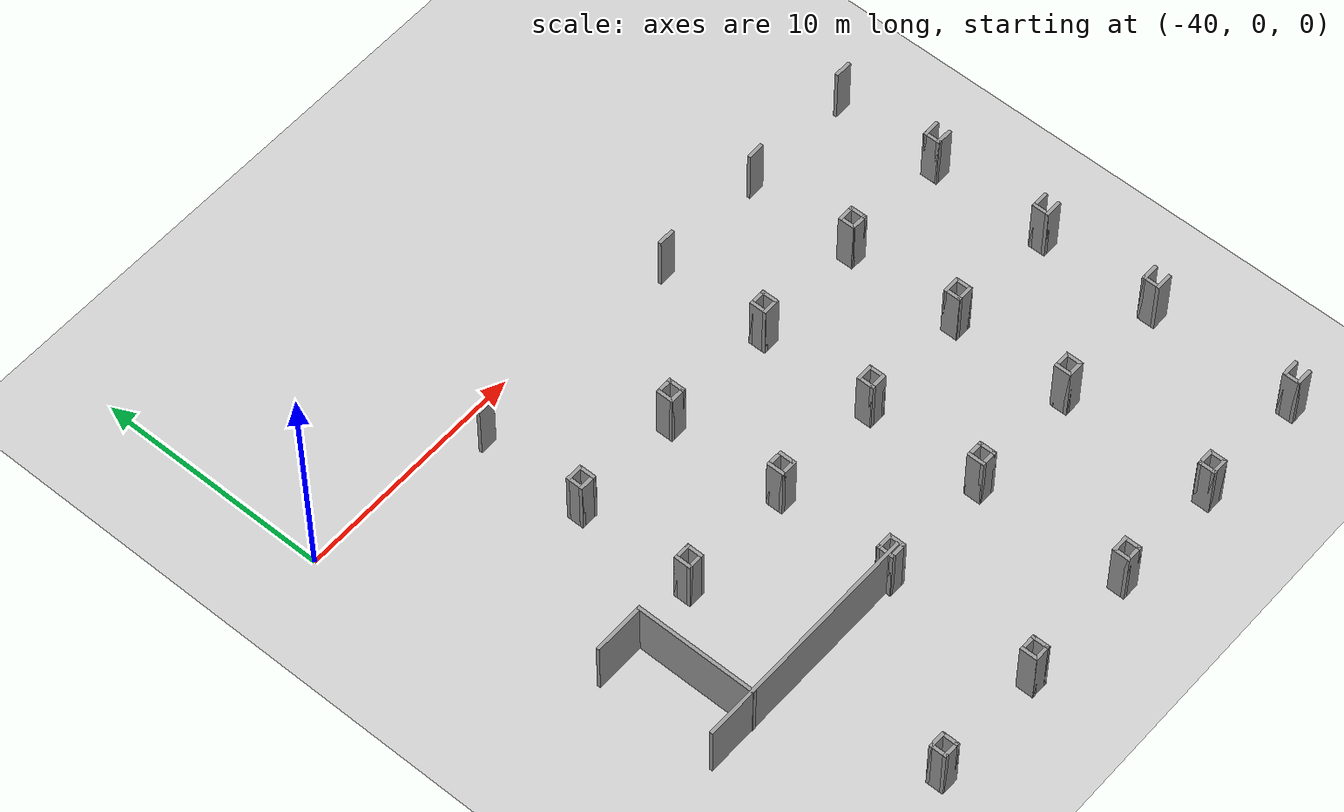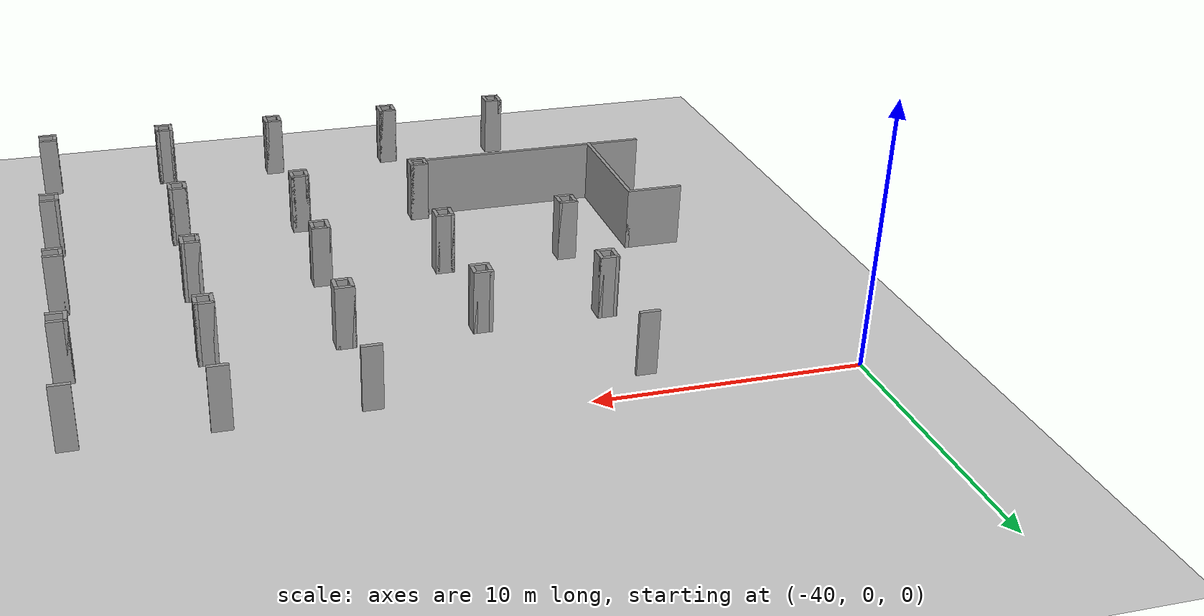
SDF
<sdf version="1.6">
 <world name="default">
  <model name="ground_plane">
   <static>1</static>
   <link name="link">
    <collision name="collision">
     <geometry><plane><normal>0 0 1</normal><size>100 100</size></plane></geometry>
     <surface>
      <contact><collide_bitmask>65535</collide_bitmask></contact>
      <friction><ode><mu>100</mu><mu2>50</mu2></ode></friction>
     </surface>
    </collision>
    <visual name="visual">
     <cast_shadows>0</cast_shadows>
     <geometry><plane><normal>0 0 1</normal><size>100 100</size></plane></geometry>
     <material>
      <script><uri>file://media/materials/scripts/gazebo.material</uri><name>Gazebo/Grey</name></script>
     </material>
    </visual>
   </link>
  </model>
  <model name="parking_area_big">
   <pose>0.030669 -0.012869 0 0 -0 0</pose>
   <link name="Wall_22">
    <collision name="Wall_22_Collision">
     <geometry><box><size>10 0.15 2.5</size></box></geometry>
     <pose>0 0 1.25 0 -0 0</pose>
    </collision>
    <visual name="Wall_22_Visual">
     <pose>0 0 1.25 0 -0 0</pose>
     <geometry><box><size>10 0.15 2.5</size></box></geometry>
     <material>
      <script><uri>file://media/materials/scripts/gazebo.material</uri><name>Gazebo/Grey</name></script>
      <ambient>1 1 1 1</ambient>
     </material>
     <meta><layer>0</layer></meta>
    </visual>
    <pose>-32.4064 -15.9854 0 0 -0 0</pose>
   </link>
   <link name="Wall_398">
    <collision name="Wall_398_Collision">
     <geometry><box><size>0.75 0.15 2.5</size></box></geometry>
     <pose>0 0 1.25 0 -0 0</pose>
    </collision>
    <visual name="Wall_398_Visual">
     <pose>0 0 1.25 0 -0 0</pose>
     <geometry><box><size>0.75 0.15 2.5</size></box></geometry>
     <material>
      <script><uri>file://media/materials/scripts/gazebo.material</uri><name>Gazebo/Grey</name></script>
      <ambient>1 1 1 1</ambient>
     </material>
     <meta><layer>0</layer></meta>
    </visual>
    <pose>-22.7152 -1.37405 0 0 -0 3.14159</pose>
   </link>
   <link name="Wall_403">
    <collision name="Wall_403_Collision">
     <geometry><box><size>0.75 0.15 2.5</size></box></geometry>
     <pose>0 0 1.25 0 -0 0</pose>
    </collision>
    <visual name="Wall_403_Visual">
     <pose>0 0 1.25 0 -0 0</pose>
     <geometry><box><size>0.75 0.15 2.5</size></box></geometry>
     <material>
      <script><uri>file://media/materials/scripts/gazebo.material</uri><name>Gazebo/Grey</name></script>
      <ambient>1 1 1 1</ambient>
     </material>
     <meta><layer>0</layer></meta>
    </visual>
    <pose>-17.6368 -1.32115 0 0 -0 3.14159</pose>
   </link>
   <link name="Wall_408">
    <collision name="Wall_408_Collision">
     <geometry><box><size>0.75 0.15 2.5</size></box></geometry>
     <pose>0 0 1.25 0 -0 0</pose>
    </collision>
    <visual name="Wall_408_Visual">
     <pose>0 0 1.25 0 -0 0</pose>
     <geometry><box><size>0.75 0.15 2.5</size></box></geometry>
     <material>
      <script><uri>file://media/materials/scripts/gazebo.material</uri><name>Gazebo/Grey</name></script>
      <ambient>1 1 1 1</ambient>
     </material>
     <meta><layer>0</layer></meta>
    </visual>
    <pose>-12.6377 -1.3476 0 0 -0 3.14159</pose>
   </link>
   <link name="Wall_416">
    <collision name="Wall_416_Collision">
     <geometry><box><size>0.75 0.15 2.5</size></box></geometry>
     <pose>0 0 1.25 0 -0 0</pose>
    </collision>
    <visual name="Wall_416_Visual">
     <pose>0 0 1.25 0 -0 0</pose>
     <geometry><box><size>0.75 0.15 2.5</size></box></geometry>
     <material>
      <script><uri>file://media/materials/scripts/gazebo.material</uri><name>Gazebo/Grey</name></script>
      <ambient>1 1 1 1</ambient>
     </material>
     <meta><layer>0</layer></meta>
    </visual>
    <pose>-27.6878 -5.5615 0 0 -0 0</pose>
   </link>
   <link name="Wall_417">
    <collision name="Wall_417_Collision">
     <geometry><box><size>0.75 0.15 2.5</size></box></geometry>
     <pose>0 0 1.25 0 -0 0</pose>
    </collision>
    <visual name="Wall_417_Visual">
     <pose>0 0 1.25 0 -0 0</pose>
     <geometry><box><size>0.75 0.15 2.5</size></box></geometry>
     <material>
      <script><uri>file://media/materials/scripts/gazebo.material</uri><name>Gazebo/Grey</name></script>
      <ambient>1 1 1 1</ambient>
     </material>
     <meta><layer>0</layer></meta>
    </visual>
    <pose>-27.3878 -5.8615 0 0 -0 -1.5708</pose>
   </link>
   <link name="Wall_418">
    <collision name="Wall_418_Collision">
     <geometry><box><size>0.75 0.15 2.5</size></box></geometry>
     <pose>0 0 1.25 0 -0 0</pose>
    </collision>
    <visual name="Wall_418_Visual">
     <pose>0 0 1.25 0 -0 0</pose>
     <geometry><box><size>0.75 0.15 2.5</size></box></geometry>
     <material>
      <script><uri>file://media/materials/scripts/gazebo.material</uri><name>Gazebo/Grey</name></script>
      <ambient>1 1 1 1</ambient>
     </material>
     <meta><layer>0</layer></meta>
    </visual>
    <pose>-27.6878 -6.1615 0 0 -0 3.14159</pose>
   </link>
   <link name="Wall_419">
    <collision name="Wall_419_Collision">
     <geometry><box><size>0.75 0.15 2.5</size></box></geometry>
     <pose>0 0 1.25 0 -0 0</pose>
    </collision>
    <visual name="Wall_419_Visual">
     <pose>0 0 1.25 0 -0 0</pose>
     <geometry><box><size>0.75 0.15 2.5</size></box></geometry>
     <material>
      <script><uri>file://media/materials/scripts/gazebo.material</uri><name>Gazebo/Grey</name></script>
      <ambient>1 1 1 1</ambient>
     </material>
     <meta><layer>0</layer></meta>
    </visual>
    <pose>-27.9878 -5.8615 0 0 -0 1.5708</pose>
   </link>
   <link name="Wall_421">
    <collision name="Wall_421_Collision">
     <geometry><box><size>0.75 0.15 2.5</size></box></geometry>
     <pose>0 0 1.25 0 -0 0</pose>
    </collision>
    <visual name="Wall_421_Visual">
     <pose>0 0 1.25 0 -0 0</pose>
     <geometry><box><size>0.75 0.15 2.5</size></box></geometry>
     <material>
      <script><uri>file://media/materials/scripts/gazebo.material</uri><name>Gazebo/Grey</name></script>
      <ambient>1 1 1 1</ambient>
     </material>
     <meta><layer>0</layer></meta>
    </visual>
    <pose>-22.6094 -5.6144 0 0 -0 0</pose>
   </link>
   <link name="Wall_422">
    <collision name="Wall_422_Collision">
     <geometry><box><size>0.75 0.15 2.5</size></box></geometry>
     <pose>0 0 1.25 0 -0 0</pose>
    </collision>
    <visual name="Wall_422_Visual">
     <pose>0 0 1.25 0 -0 0</pose>
     <geometry><box><size>0.75 0.15 2.5</size></box></geometry>
     <material>
      <script><uri>file://media/materials/scripts/gazebo.material</uri><name>Gazebo/Grey</name></script>
      <ambient>1 1 1 1</ambient>
     </material>
     <meta><layer>0</layer></meta>
    </visual>
    <pose>-22.3094 -5.9144 0 0 -0 -1.5708</pose>
   </link>
   <link name="Wall_423">
    <collision name="Wall_423_Collision">
     <geometry><box><size>0.75 0.15 2.5</size></box></geometry>
     <pose>0 0 1.25 0 -0 0</pose>
    </collision>
    <visual name="Wall_423_Visual">
     <pose>0 0 1.25 0 -0 0</pose>
     <geometry><box><size>0.75 0.15 2.5</size></box></geometry>
     <material>
      <script><uri>file://media/materials/scripts/gazebo.material</uri><name>Gazebo/Grey</name></script>
      <ambient>1 1 1 1</ambient>
     </material>
     <meta><layer>0</layer></meta>
    </visual>
    <pose>-22.6094 -6.2144 0 0 -0 3.14159</pose>
   </link>
   <link name="Wall_424">
    <collision name="Wall_424_Collision">
     <geometry><box><size>0.75 0.15 2.5</size></box></geometry>
     <pose>0 0 1.25 0 -0 0</pose>
    </collision>
    <visual name="Wall_424_Visual">
     <pose>0 0 1.25 0 -0 0</pose>
     <geometry><box><size>0.75 0.15 2.5</size></box></geometry>
     <material>
      <script><uri>file://media/materials/scripts/gazebo.material</uri><name>Gazebo/Grey</name></script>
      <ambient>1 1 1 1</ambient>
     </material>
     <meta><layer>0</layer></meta>
    </visual>
    <pose>-22.9094 -5.9144 0 0 -0 1.5708</pose>
   </link>
   <link name="Wall_429">
    <collision name="Wall_429_Collision">
     <geometry><box><size>0.75 0.15 2.5</size></box></geometry>
     <pose>0 0 1.25 0 -0 0</pose>
    </collision>
    <visual name="Wall_429_Visual">
     <pose>0 0 1.25 0 -0 0</pose>
     <geometry><box><size>0.75 0.15 2.5</size></box></geometry>
     <material>
      <script><uri>file://media/materials/scripts/gazebo.material</uri><name>Gazebo/Grey</name></script>
      <ambient>1 1 1 1</ambient>
     </material>
     <meta><layer>0</layer></meta>
    </visual>
    <pose>-17.6632 -5.64085 0 0 -0 0</pose>
   </link>
   <link name="Wall_430">
    <collision name="Wall_430_Collision">
     <geometry><box><size>0.75 0.15 2.5</size></box></geometry>
     <pose>0 0 1.25 0 -0 0</pose>
    </collision>
    <visual name="Wall_430_Visual">
     <pose>0 0 1.25 0 -0 0</pose>
     <geometry><box><size>0.75 0.15 2.5</size></box></geometry>
     <material>
      <script><uri>file://media/materials/scripts/gazebo.material</uri><name>Gazebo/Grey</name></script>
      <ambient>1 1 1 1</ambient>
     </material>
     <meta><layer>0</layer></meta>
    </visual>
    <pose>-17.3632 -5.94085 0 0 -0 -1.5708</pose>
   </link>
   <link name="Wall_431">
    <collision name="Wall_431_Collision">
     <geometry><box><size>0.75 0.15 2.5</size></box></geometry>
     <pose>0 0 1.25 0 -0 0</pose>
    </collision>
    <visual name="Wall_431_Visual">
     <pose>0 0 1.25 0 -0 0</pose>
     <geometry><box><size>0.75 0.15 2.5</size></box></geometry>
     <material>
      <script><uri>file://media/materials/scripts/gazebo.material</uri><name>Gazebo/Grey</name></script>
      <ambient>1 1 1 1</ambient>
     </material>
     <meta><layer>0</layer></meta>
    </visual>
    <pose>-17.6632 -6.24085 0 0 -0 3.14159</pose>
   </link>
   <link name="Wall_432">
    <collision name="Wall_432_Collision">
     <geometry><box><size>0.75 0.15 2.5</size></box></geometry>
     <pose>0 0 1.25 0 -0 0</pose>
    </collision>
    <visual name="Wall_432_Visual">
     <pose>0 0 1.25 0 -0 0</pose>
     <geometry><box><size>0.75 0.15 2.5</size></box></geometry>
     <material>
      <script><uri>file://media/materials/scripts/gazebo.material</uri><name>Gazebo/Grey</name></script>
      <ambient>1 1 1 1</ambient>
     </material>
     <meta><layer>0</layer></meta>
    </visual>
    <pose>-17.9632 -5.94085 0 0 -0 1.5708</pose>
   </link>
   <link name="Wall_434">
    <collision name="Wall_434_Collision">
     <geometry><box><size>0.75 0.15 2.5</size></box></geometry>
     <pose>0 0 1.25 0 -0 0</pose>
    </collision>
    <visual name="Wall_434_Visual">
     <pose>0 0 1.25 0 -0 0</pose>
     <geometry><box><size>0.75 0.15 2.5</size></box></geometry>
     <material>
      <script><uri>file://media/materials/scripts/gazebo.material</uri><name>Gazebo/Grey</name></script>
      <ambient>1 1 1 1</ambient>
     </material>
     <meta><layer>0</layer></meta>
    </visual>
    <pose>-12.6642 -5.5615 0 0 -0 0</pose>
   </link>
   <link name="Wall_436">
    <collision name="Wall_436_Collision">
     <geometry><box><size>0.75 0.15 2.5</size></box></geometry>
     <pose>0 0 1.25 0 -0 0</pose>
    </collision>
    <visual name="Wall_436_Visual">
     <pose>0 0 1.25 0 -0 0</pose>
     <geometry><box><size>0.75 0.15 2.5</size></box></geometry>
     <material>
      <script><uri>file://media/materials/scripts/gazebo.material</uri><name>Gazebo/Grey</name></script>
      <ambient>1 1 1 1</ambient>
     </material>
     <meta><layer>0</layer></meta>
    </visual>
    <pose>-12.6642 -6.1615 0 0 -0 3.14159</pose>
   </link>
   <link name="Wall_437">
    <collision name="Wall_437_Collision">
     <geometry><box><size>0.75 0.15 2.5</size></box></geometry>
     <pose>0 0 1.25 0 -0 0</pose>
    </collision>
    <visual name="Wall_437_Visual">
     <pose>0 0 1.25 0 -0 0</pose>
     <geometry><box><size>0.75 0.15 2.5</size></box></geometry>
     <material>
      <script><uri>file://media/materials/scripts/gazebo.material</uri><name>Gazebo/Grey</name></script>
      <ambient>1 1 1 1</ambient>
     </material>
     <meta><layer>0</layer></meta>
    </visual>
    <pose>-12.9642 -5.8615 0 0 -0 1.5708</pose>
   </link>
   <link name="Wall_444">
    <collision name="Wall_444_Collision">
     <geometry><box><size>0.75 0.15 2.5</size></box></geometry>
     <pose>0 0 1.25 0 -0 0</pose>
    </collision>
    <visual name="Wall_444_Visual">
     <pose>0 0 1.25 0 -0 0</pose>
     <geometry><box><size>0.75 0.15 2.5</size></box></geometry>
     <material>
      <script><uri>file://media/materials/scripts/gazebo.material</uri><name>Gazebo/Grey</name></script>
      <ambient>1 1 1 1</ambient>
     </material>
     <meta><layer>0</layer></meta>
    </visual>
    <pose>-27.5026 -10.5077 0 0 -0 0</pose>
   </link>
   <link name="Wall_445">
    <collision name="Wall_445_Collision">
     <geometry><box><size>0.75 0.15 2.5</size></box></geometry>
     <pose>0 0 1.25 0 -0 0</pose>
    </collision>
    <visual name="Wall_445_Visual">
     <pose>0 0 1.25 0 -0 0</pose>
     <geometry><box><size>0.75 0.15 2.5</size></box></geometry>
     <material>
      <script><uri>file://media/materials/scripts/gazebo.material</uri><name>Gazebo/Grey</name></script>
      <ambient>1 1 1 1</ambient>
     </material>
     <meta><layer>0</layer></meta>
    </visual>
    <pose>-27.2026 -10.8077 0 0 -0 -1.5708</pose>
   </link>
   <link name="Wall_446">
    <collision name="Wall_446_Collision">
     <geometry><box><size>0.75 0.15 2.5</size></box></geometry>
     <pose>0 0 1.25 0 -0 0</pose>
    </collision>
    <visual name="Wall_446_Visual">
     <pose>0 0 1.25 0 -0 0</pose>
     <geometry><box><size>0.75 0.15 2.5</size></box></geometry>
     <material>
      <script><uri>file://media/materials/scripts/gazebo.material</uri><name>Gazebo/Grey</name></script>
      <ambient>1 1 1 1</ambient>
     </material>
     <meta><layer>0</layer></meta>
    </visual>
    <pose>-27.5026 -11.1077 0 0 -0 3.14159</pose>
   </link>
   <link name="Wall_447">
    <collision name="Wall_447_Collision">
     <geometry><box><size>0.75 0.15 2.5</size></box></geometry>
     <pose>0 0 1.25 0 -0 0</pose>
    </collision>
    <visual name="Wall_447_Visual">
     <pose>0 0 1.25 0 -0 0</pose>
     <geometry><box><size>0.75 0.15 2.5</size></box></geometry>
     <material>
      <script><uri>file://media/materials/scripts/gazebo.material</uri><name>Gazebo/Grey</name></script>
      <ambient>1 1 1 1</ambient>
     </material>
     <meta><layer>0</layer></meta>
    </visual>
    <pose>-27.8026 -10.8077 0 0 -0 1.5708</pose>
   </link>
   <link name="Wall_449">
    <collision name="Wall_449_Collision">
     <geometry><box><size>0.75 0.15 2.5</size></box></geometry>
     <pose>0 0 1.25 0 -0 0</pose>
    </collision>
    <visual name="Wall_449_Visual">
     <pose>0 0 1.25 0 -0 0</pose>
     <geometry><box><size>0.75 0.15 2.5</size></box></geometry>
     <material>
      <script><uri>file://media/materials/scripts/gazebo.material</uri><name>Gazebo/Grey</name></script>
      <ambient>1 1 1 1</ambient>
     </material>
     <meta><layer>0</layer></meta>
    </visual>
    <pose>-22.6358 -10.587 0 0 -0 0</pose>
   </link>
   <link name="Wall_450">
    <collision name="Wall_450_Collision">
     <geometry><box><size>0.75 0.15 2.5</size></box></geometry>
     <pose>0 0 1.25 0 -0 0</pose>
    </collision>
    <visual name="Wall_450_Visual">
     <pose>0 0 1.25 0 -0 0</pose>
     <geometry><box><size>0.75 0.15 2.5</size></box></geometry>
     <material>
      <script><uri>file://media/materials/scripts/gazebo.material</uri><name>Gazebo/Grey</name></script>
      <ambient>1 1 1 1</ambient>
     </material>
     <meta><layer>0</layer></meta>
    </visual>
    <pose>-22.3358 -10.887 0 0 -0 -1.5708</pose>
   </link>
   <link name="Wall_451">
    <collision name="Wall_451_Collision">
     <geometry><box><size>0.75 0.15 2.5</size></box></geometry>
     <pose>0 0 1.25 0 -0 0</pose>
    </collision>
    <visual name="Wall_451_Visual">
     <pose>0 0 1.25 0 -0 0</pose>
     <geometry><box><size>0.75 0.15 2.5</size></box></geometry>
     <material>
      <script><uri>file://media/materials/scripts/gazebo.material</uri><name>Gazebo/Grey</name></script>
      <ambient>1 1 1 1</ambient>
     </material>
     <meta><layer>0</layer></meta>
    </visual>
    <pose>-22.6358 -11.187 0 0 -0 3.14159</pose>
   </link>
   <link name="Wall_452">
    <collision name="Wall_452_Collision">
     <geometry><box><size>0.75 0.15 2.5</size></box></geometry>
     <pose>0 0 1.25 0 -0 0</pose>
    </collision>
    <visual name="Wall_452_Visual">
     <pose>0 0 1.25 0 -0 0</pose>
     <geometry><box><size>0.75 0.15 2.5</size></box></geometry>
     <material>
      <script><uri>file://media/materials/scripts/gazebo.material</uri><name>Gazebo/Grey</name></script>
      <ambient>1 1 1 1</ambient>
     </material>
     <meta><layer>0</layer></meta>
    </visual>
    <pose>-22.9358 -10.887 0 0 -0 1.5708</pose>
   </link>
   <link name="Wall_454">
    <collision name="Wall_454_Collision">
     <geometry><box><size>0.75 0.15 2.5</size></box></geometry>
     <pose>0 0 1.25 0 -0 0</pose>
    </collision>
    <visual name="Wall_454_Visual">
     <pose>0 0 1.25 0 -0 0</pose>
     <geometry><box><size>0.75 0.15 2.5</size></box></geometry>
     <material>
      <script><uri>file://media/materials/scripts/gazebo.material</uri><name>Gazebo/Grey</name></script>
      <ambient>1 1 1 1</ambient>
     </material>
     <meta><layer>0</layer></meta>
    </visual>
    <pose>-17.6632 -10.5341 0 0 -0 0</pose>
   </link>
   <link name="Wall_455">
    <collision name="Wall_455_Collision">
     <geometry><box><size>0.75 0.15 2.5</size></box></geometry>
     <pose>0 0 1.25 0 -0 0</pose>
    </collision>
    <visual name="Wall_455_Visual">
     <pose>0 0 1.25 0 -0 0</pose>
     <geometry><box><size>0.75 0.15 2.5</size></box></geometry>
     <material>
      <script><uri>file://media/materials/scripts/gazebo.material</uri><name>Gazebo/Grey</name></script>
      <ambient>1 1 1 1</ambient>
     </material>
     <meta><layer>0</layer></meta>
    </visual>
    <pose>-17.3632 -10.8341 0 0 -0 -1.5708</pose>
   </link>
   <link name="Wall_456">
    <collision name="Wall_456_Collision">
     <geometry><box><size>0.75 0.15 2.5</size></box></geometry>
     <pose>0 0 1.25 0 -0 0</pose>
    </collision>
    <visual name="Wall_456_Visual">
     <pose>0 0 1.25 0 -0 0</pose>
     <geometry><box><size>0.75 0.15 2.5</size></box></geometry>
     <material>
      <script><uri>file://media/materials/scripts/gazebo.material</uri><name>Gazebo/Grey</name></script>
      <ambient>1 1 1 1</ambient>
     </material>
     <meta><layer>0</layer></meta>
    </visual>
    <pose>-17.6632 -11.1341 0 0 -0 3.14159</pose>
   </link>
   <link name="Wall_457">
    <collision name="Wall_457_Collision">
     <geometry><box><size>0.75 0.15 2.5</size></box></geometry>
     <pose>0 0 1.25 0 -0 0</pose>
    </collision>
    <visual name="Wall_457_Visual">
     <pose>0 0 1.25 0 -0 0</pose>
     <geometry><box><size>0.75 0.15 2.5</size></box></geometry>
     <material>
      <script><uri>file://media/materials/scripts/gazebo.material</uri><name>Gazebo/Grey</name></script>
      <ambient>1 1 1 1</ambient>
     </material>
     <meta><layer>0</layer></meta>
    </visual>
    <pose>-17.9632 -10.8341 0 0 -0 1.5708</pose>
   </link>
   <link name="Wall_459">
    <collision name="Wall_459_Collision">
     <geometry><box><size>0.75 0.15 2.5</size></box></geometry>
     <pose>0 0 1.25 0 -0 0</pose>
    </collision>
    <visual name="Wall_459_Visual">
     <pose>0 0 1.25 0 -0 0</pose>
     <geometry><box><size>0.75 0.15 2.5</size></box></geometry>
     <material>
      <script><uri>file://media/materials/scripts/gazebo.material</uri><name>Gazebo/Grey</name></script>
      <ambient>1 1 1 1</ambient>
     </material>
     <meta><layer>0</layer></meta>
    </visual>
    <pose>-12.6377 -10.6135 0 0 -0 0</pose>
   </link>
   <link name="Wall_461">
    <collision name="Wall_461_Collision">
     <geometry><box><size>0.75 0.15 2.5</size></box></geometry>
     <pose>0 0 1.25 0 -0 0</pose>
    </collision>
    <visual name="Wall_461_Visual">
     <pose>0 0 1.25 0 -0 0</pose>
     <geometry><box><size>0.75 0.15 2.5</size></box></geometry>
     <material>
      <script><uri>file://media/materials/scripts/gazebo.material</uri><name>Gazebo/Grey</name></script>
      <ambient>1 1 1 1</ambient>
     </material>
     <meta><layer>0</layer></meta>
    </visual>
    <pose>-12.6377 -11.2135 0 0 -0 3.14159</pose>
   </link>
   <link name="Wall_462">
    <collision name="Wall_462_Collision">
     <geometry><box><size>0.75 0.15 2.5</size></box></geometry>
     <pose>0 0 1.25 0 -0 0</pose>
    </collision>
    <visual name="Wall_462_Visual">
     <pose>0 0 1.25 0 -0 0</pose>
     <geometry><box><size>0.75 0.15 2.5</size></box></geometry>
     <material>
      <script><uri>file://media/materials/scripts/gazebo.material</uri><name>Gazebo/Grey</name></script>
      <ambient>1 1 1 1</ambient>
     </material>
     <meta><layer>0</layer></meta>
    </visual>
    <pose>-12.9377 -10.9135 0 0 -0 1.5708</pose>
   </link>
   <link name="Wall_469">
    <collision name="Wall_469_Collision">
     <geometry><box><size>0.75 0.15 2.5</size></box></geometry>
     <pose>0 0 1.25 0 -0 0</pose>
    </collision>
    <visual name="Wall_469_Visual">
     <pose>0 0 1.25 0 -0 0</pose>
     <geometry><box><size>0.75 0.15 2.5</size></box></geometry>
     <material>
      <script><uri>file://media/materials/scripts/gazebo.material</uri><name>Gazebo/Grey</name></script>
      <ambient>1 1 1 1</ambient>
     </material>
     <meta><layer>0</layer></meta>
    </visual>
    <pose>-27.6613 -15.5861 0 0 -0 0</pose>
   </link>
   <link name="Wall_470">
    <collision name="Wall_470_Collision">
     <geometry><box><size>0.75 0.15 2.5</size></box></geometry>
     <pose>0 0 1.25 0 -0 0</pose>
    </collision>
    <visual name="Wall_470_Visual">
     <pose>0 0 1.25 0 -0 0</pose>
     <geometry><box><size>0.75 0.15 2.5</size></box></geometry>
     <material>
      <script><uri>file://media/materials/scripts/gazebo.material</uri><name>Gazebo/Grey</name></script>
      <ambient>1 1 1 1</ambient>
     </material>
     <meta><layer>0</layer></meta>
    </visual>
    <pose>-27.3613 -15.8861 0 0 -0 -1.5708</pose>
   </link>
   <link name="Wall_471">
    <collision name="Wall_471_Collision">
     <geometry><box><size>0.75 0.15 2.5</size></box></geometry>
     <pose>0 0 1.25 0 -0 0</pose>
    </collision>
    <visual name="Wall_471_Visual">
     <pose>0 0 1.25 0 -0 0</pose>
     <geometry><box><size>0.75 0.15 2.5</size></box></geometry>
     <material>
      <script><uri>file://media/materials/scripts/gazebo.material</uri><name>Gazebo/Grey</name></script>
      <ambient>1 1 1 1</ambient>
     </material>
     <meta><layer>0</layer></meta>
    </visual>
    <pose>-27.6613 -16.1861 0 0 -0 3.14159</pose>
   </link>
   <link name="Wall_472">
    <collision name="Wall_472_Collision">
     <geometry><box><size>0.75 0.15 2.5</size></box></geometry>
     <pose>0 0 1.25 0 -0 0</pose>
    </collision>
    <visual name="Wall_472_Visual">
     <pose>0 0 1.25 0 -0 0</pose>
     <geometry><box><size>0.75 0.15 2.5</size></box></geometry>
     <material>
      <script><uri>file://media/materials/scripts/gazebo.material</uri><name>Gazebo/Grey</name></script>
      <ambient>1 1 1 1</ambient>
     </material>
     <meta><layer>0</layer></meta>
    </visual>
    <pose>-27.9613 -15.8861 0 0 -0 1.5708</pose>
   </link>
   <link name="Wall_474">
    <collision name="Wall_474_Collision">
     <geometry><box><size>0.75 0.15 2.5</size></box></geometry>
     <pose>0 0 1.25 0 -0 0</pose>
    </collision>
    <visual name="Wall_474_Visual">
     <pose>0 0 1.25 0 -0 0</pose>
     <geometry><box><size>0.75 0.15 2.5</size></box></geometry>
     <material>
      <script><uri>file://media/materials/scripts/gazebo.material</uri><name>Gazebo/Grey</name></script>
      <ambient>1 1 1 1</ambient>
     </material>
     <meta><layer>0</layer></meta>
    </visual>
    <pose>-22.6358 -15.5861 0 0 -0 0</pose>
   </link>
   <link name="Wall_475">
    <collision name="Wall_475_Collision">
     <geometry><box><size>0.75 0.15 2.5</size></box></geometry>
     <pose>0 0 1.25 0 -0 0</pose>
    </collision>
    <visual name="Wall_475_Visual">
     <pose>0 0 1.25 0 -0 0</pose>
     <geometry><box><size>0.75 0.15 2.5</size></box></geometry>
     <material>
      <script><uri>file://media/materials/scripts/gazebo.material</uri><name>Gazebo/Grey</name></script>
      <ambient>1 1 1 1</ambient>
     </material>
     <meta><layer>0</layer></meta>
    </visual>
    <pose>-22.3358 -15.8861 0 0 -0 -1.5708</pose>
   </link>
   <link name="Wall_476">
    <collision name="Wall_476_Collision">
     <geometry><box><size>0.75 0.15 2.5</size></box></geometry>
     <pose>0 0 1.25 0 -0 0</pose>
    </collision>
    <visual name="Wall_476_Visual">
     <pose>0 0 1.25 0 -0 0</pose>
     <geometry><box><size>0.75 0.15 2.5</size></box></geometry>
     <material>
      <script><uri>file://media/materials/scripts/gazebo.material</uri><name>Gazebo/Grey</name></script>
      <ambient>1 1 1 1</ambient>
     </material>
     <meta><layer>0</layer></meta>
    </visual>
    <pose>-22.6358 -16.1861 0 0 -0 3.14159</pose>
   </link>
   <link name="Wall_477">
    <collision name="Wall_477_Collision">
     <geometry><box><size>0.75 0.15 2.5</size></box></geometry>
     <pose>0 0 1.25 0 -0 0</pose>
    </collision>
    <visual name="Wall_477_Visual">
     <pose>0 0 1.25 0 -0 0</pose>
     <geometry><box><size>0.75 0.15 2.5</size></box></geometry>
     <material>
      <script><uri>file://media/materials/scripts/gazebo.material</uri><name>Gazebo/Grey</name></script>
      <ambient>1 1 1 1</ambient>
     </material>
     <meta><layer>0</layer></meta>
    </visual>
    <pose>-22.9358 -15.8861 0 0 -0 1.5708</pose>
   </link>
   <link name="Wall_479">
    <collision name="Wall_479_Collision">
     <geometry><box><size>0.75 0.15 2.5</size></box></geometry>
     <pose>0 0 1.25 0 -0 0</pose>
    </collision>
    <visual name="Wall_479_Visual">
     <pose>0 0 1.25 0 -0 0</pose>
     <geometry><box><size>0.75 0.15 2.5</size></box></geometry>
     <material>
      <script><uri>file://media/materials/scripts/gazebo.material</uri><name>Gazebo/Grey</name></script>
      <ambient>1 1 1 1</ambient>
     </material>
     <meta><layer>0</layer></meta>
    </visual>
    <pose>-17.6632 -15.5596 0 0 -0 0</pose>
   </link>
   <link name="Wall_480">
    <collision name="Wall_480_Collision">
     <geometry><box><size>0.75 0.15 2.5</size></box></geometry>
     <pose>0 0 1.25 0 -0 0</pose>
    </collision>
    <visual name="Wall_480_Visual">
     <pose>0 0 1.25 0 -0 0</pose>
     <geometry><box><size>0.75 0.15 2.5</size></box></geometry>
     <material>
      <script><uri>file://media/materials/scripts/gazebo.material</uri><name>Gazebo/Grey</name></script>
      <ambient>1 1 1 1</ambient>
     </material>
     <meta><layer>0</layer></meta>
    </visual>
    <pose>-17.3632 -15.8596 0 0 -0 -1.5708</pose>
   </link>
   <link name="Wall_481">
    <collision name="Wall_481_Collision">
     <geometry><box><size>0.75 0.15 2.5</size></box></geometry>
     <pose>0 0 1.25 0 -0 0</pose>
    </collision>
    <visual name="Wall_481_Visual">
     <pose>0 0 1.25 0 -0 0</pose>
     <geometry><box><size>0.75 0.15 2.5</size></box></geometry>
     <material>
      <script><uri>file://media/materials/scripts/gazebo.material</uri><name>Gazebo/Grey</name></script>
      <ambient>1 1 1 1</ambient>
     </material>
     <meta><layer>0</layer></meta>
    </visual>
    <pose>-17.6632 -16.1596 0 0 -0 3.14159</pose>
   </link>
   <link name="Wall_482">
    <collision name="Wall_482_Collision">
     <geometry><box><size>0.75 0.15 2.5</size></box></geometry>
     <pose>0 0 1.25 0 -0 0</pose>
    </collision>
    <visual name="Wall_482_Visual">
     <pose>0 0 1.25 0 -0 0</pose>
     <geometry><box><size>0.75 0.15 2.5</size></box></geometry>
     <material>
      <script><uri>file://media/materials/scripts/gazebo.material</uri><name>Gazebo/Grey</name></script>
      <ambient>1 1 1 1</ambient>
     </material>
     <meta><layer>0</layer></meta>
    </visual>
    <pose>-17.9632 -15.8596 0 0 -0 1.5708</pose>
   </link>
   <link name="Wall_484">
    <collision name="Wall_484_Collision">
     <geometry><box><size>0.75 0.15 2.5</size></box></geometry>
     <pose>0 0 1.25 0 -0 0</pose>
    </collision>
    <visual name="Wall_484_Visual">
     <pose>0 0 1.25 0 -0 0</pose>
     <geometry><box><size>0.75 0.15 2.5</size></box></geometry>
     <material>
      <script><uri>file://media/materials/scripts/gazebo.material</uri><name>Gazebo/Grey</name></script>
      <ambient>1 1 1 1</ambient>
     </material>
     <meta><layer>0</layer></meta>
    </visual>
    <pose>-12.6113 -15.6125 0 0 -0 0</pose>
   </link>
   <link name="Wall_486">
    <collision name="Wall_486_Collision">
     <geometry><box><size>0.75 0.15 2.5</size></box></geometry>
     <pose>0 0 1.25 0 -0 0</pose>
    </collision>
    <visual name="Wall_486_Visual">
     <pose>0 0 1.25 0 -0 0</pose>
     <geometry><box><size>0.75 0.15 2.5</size></box></geometry>
     <material>
      <script><uri>file://media/materials/scripts/gazebo.material</uri><name>Gazebo/Grey</name></script>
      <ambient>1 1 1 1</ambient>
     </material>
     <meta><layer>0</layer></meta>
    </visual>
    <pose>-12.6113 -16.239 0 0 -0 3.14159</pose>
   </link>
   <link name="Wall_488">
    <collision name="Wall_488_Collision">
     <geometry><box><size>0.77645 0.15 2.5</size></box></geometry>
     <pose>0 0 1.25 0 -0 0</pose>
    </collision>
    <visual name="Wall_488_Visual">
     <pose>0 0 1.25 0 -0 0</pose>
     <geometry><box><size>0.77645 0.15 2.5</size></box></geometry>
     <material>
      <script><uri>file://media/materials/scripts/gazebo.material</uri><name>Gazebo/Grey</name></script>
      <ambient>1 1 1 1</ambient>
     </material>
     <meta><layer>0</layer></meta>
    </visual>
    <pose>-12.9113 -15.9257 0 0 -0 1.5708</pose>
   </link>
   <link name="Wall_495">
    <collision name="Wall_495_Collision">
     <geometry><box><size>0.75 0.15 2.5</size></box></geometry>
     <pose>0 0 1.25 0 -0 0</pose>
    </collision>
    <visual name="Wall_495_Visual">
     <pose>0 0 1.25 0 -0 0</pose>
     <geometry><box><size>0.75 0.15 2.5</size></box></geometry>
     <material>
      <script><uri>file://media/materials/scripts/gazebo.material</uri><name>Gazebo/Grey</name></script>
      <ambient>1 1 1 1</ambient>
     </material>
     <meta><layer>0</layer></meta>
    </visual>
    <pose>-27.6613 -21.9076 0 0 -0 0</pose>
   </link>
   <link name="Wall_496">
    <collision name="Wall_496_Collision">
     <geometry><box><size>0.75 0.15 2.5</size></box></geometry>
     <pose>0 0 1.25 0 -0 0</pose>
    </collision>
    <visual name="Wall_496_Visual">
     <pose>0 0 1.25 0 -0 0</pose>
     <geometry><box><size>0.75 0.15 2.5</size></box></geometry>
     <material>
      <script><uri>file://media/materials/scripts/gazebo.material</uri><name>Gazebo/Grey</name></script>
      <ambient>1 1 1 1</ambient>
     </material>
     <meta><layer>0</layer></meta>
    </visual>
    <pose>-27.3613 -22.2076 0 0 -0 -1.5708</pose>
   </link>
   <link name="Wall_497">
    <collision name="Wall_497_Collision">
     <geometry><box><size>0.75 0.15 2.5</size></box></geometry>
     <pose>0 0 1.25 0 -0 0</pose>
    </collision>
    <visual name="Wall_497_Visual">
     <pose>0 0 1.25 0 -0 0</pose>
     <geometry><box><size>0.75 0.15 2.5</size></box></geometry>
     <material>
      <script><uri>file://media/materials/scripts/gazebo.material</uri><name>Gazebo/Grey</name></script>
      <ambient>1 1 1 1</ambient>
     </material>
     <meta><layer>0</layer></meta>
    </visual>
    <pose>-27.6613 -22.5076 0 0 -0 3.14159</pose>
   </link>
   <link name="Wall_498">
    <collision name="Wall_498_Collision">
     <geometry><box><size>0.75 0.15 2.5</size></box></geometry>
     <pose>0 0 1.25 0 -0 0</pose>
    </collision>
    <visual name="Wall_498_Visual">
     <pose>0 0 1.25 0 -0 0</pose>
     <geometry><box><size>0.75 0.15 2.5</size></box></geometry>
     <material>
      <script><uri>file://media/materials/scripts/gazebo.material</uri><name>Gazebo/Grey</name></script>
      <ambient>1 1 1 1</ambient>
     </material>
     <meta><layer>0</layer></meta>
    </visual>
    <pose>-27.9613 -22.2076 0 0 -0 1.5708</pose>
   </link>
   <link name="Wall_502">
    <collision name="Wall_502_Collision">
     <geometry><box><size>0.75 0.15 2.5</size></box></geometry>
     <pose>0 0 1.25 0 -0 0</pose>
    </collision>
    <visual name="Wall_502_Visual">
     <pose>0 0 1.25 0 -0 0</pose>
     <geometry><box><size>0.75 0.15 2.5</size></box></geometry>
     <material>
      <script><uri>file://media/materials/scripts/gazebo.material</uri><name>Gazebo/Grey</name></script>
      <ambient>1 1 1 1</ambient>
     </material>
     <meta><layer>0</layer></meta>
    </visual>
    <pose>-22.4507 -21.8547 0 0 -0 0</pose>
   </link>
   <link name="Wall_503">
    <collision name="Wall_503_Collision">
     <geometry><box><size>0.75 0.15 2.5</size></box></geometry>
     <pose>0 0 1.25 0 -0 0</pose>
    </collision>
    <visual name="Wall_503_Visual">
     <pose>0 0 1.25 0 -0 0</pose>
     <geometry><box><size>0.75 0.15 2.5</size></box></geometry>
     <material>
      <script><uri>file://media/materials/scripts/gazebo.material</uri><name>Gazebo/Grey</name></script>
      <ambient>1 1 1 1</ambient>
     </material>
     <meta><layer>0</layer></meta>
    </visual>
    <pose>-22.1507 -22.1547 0 0 -0 -1.5708</pose>
   </link>
   <link name="Wall_504">
    <collision name="Wall_504_Collision">
     <geometry><box><size>0.75 0.15 2.5</size></box></geometry>
     <pose>0 0 1.25 0 -0 0</pose>
    </collision>
    <visual name="Wall_504_Visual">
     <pose>0 0 1.25 0 -0 0</pose>
     <geometry><box><size>0.75 0.15 2.5</size></box></geometry>
     <material>
      <script><uri>file://media/materials/scripts/gazebo.material</uri><name>Gazebo/Grey</name></script>
      <ambient>1 1 1 1</ambient>
     </material>
     <meta><layer>0</layer></meta>
    </visual>
    <pose>-22.4507 -22.4547 0 0 -0 3.14159</pose>
   </link>
   <link name="Wall_505">
    <collision name="Wall_505_Collision">
     <geometry><box><size>0.75 0.15 2.5</size></box></geometry>
     <pose>0 0 1.25 0 -0 0</pose>
    </collision>
    <visual name="Wall_505_Visual">
     <pose>0 0 1.25 0 -0 0</pose>
     <geometry><box><size>0.75 0.15 2.5</size></box></geometry>
     <material>
      <script><uri>file://media/materials/scripts/gazebo.material</uri><name>Gazebo/Grey</name></script>
      <ambient>1 1 1 1</ambient>
     </material>
     <meta><layer>0</layer></meta>
    </visual>
    <pose>-22.7507 -22.1547 0 0 -0 1.5708</pose>
   </link>
   <link name="Wall_507">
    <collision name="Wall_507_Collision">
     <geometry><box><size>0.75 0.15 2.5</size></box></geometry>
     <pose>0 0 1.25 0 -0 0</pose>
    </collision>
    <visual name="Wall_507_Visual">
     <pose>0 0 1.25 0 -0 0</pose>
     <geometry><box><size>0.75 0.15 2.5</size></box></geometry>
     <material>
      <script><uri>file://media/materials/scripts/gazebo.material</uri><name>Gazebo/Grey</name></script>
      <ambient>1 1 1 1</ambient>
     </material>
     <meta><layer>0</layer></meta>
    </visual>
    <pose>-17.6632 -21.9341 0 0 -0 0</pose>
   </link>
   <link name="Wall_508">
    <collision name="Wall_508_Collision">
     <geometry><box><size>0.75 0.15 2.5</size></box></geometry>
     <pose>0 0 1.25 0 -0 0</pose>
    </collision>
    <visual name="Wall_508_Visual">
     <pose>0 0 1.25 0 -0 0</pose>
     <geometry><box><size>0.75 0.15 2.5</size></box></geometry>
     <material>
      <script><uri>file://media/materials/scripts/gazebo.material</uri><name>Gazebo/Grey</name></script>
      <ambient>1 1 1 1</ambient>
     </material>
     <meta><layer>0</layer></meta>
    </visual>
    <pose>-17.3632 -22.2341 0 0 -0 -1.5708</pose>
   </link>
   <link name="Wall_509">
    <collision name="Wall_509_Collision">
     <geometry><box><size>0.75 0.15 2.5</size></box></geometry>
     <pose>0 0 1.25 0 -0 0</pose>
    </collision>
    <visual name="Wall_509_Visual">
     <pose>0 0 1.25 0 -0 0</pose>
     <geometry><box><size>0.75 0.15 2.5</size></box></geometry>
     <material>
      <script><uri>file://media/materials/scripts/gazebo.material</uri><name>Gazebo/Grey</name></script>
      <ambient>1 1 1 1</ambient>
     </material>
     <meta><layer>0</layer></meta>
    </visual>
    <pose>-17.6632 -22.5341 0 0 -0 3.14159</pose>
   </link>
   <link name="Wall_510">
    <collision name="Wall_510_Collision">
     <geometry><box><size>0.75 0.15 2.5</size></box></geometry>
     <pose>0 0 1.25 0 -0 0</pose>
    </collision>
    <visual name="Wall_510_Visual">
     <pose>0 0 1.25 0 -0 0</pose>
     <geometry><box><size>0.75 0.15 2.5</size></box></geometry>
     <material>
      <script><uri>file://media/materials/scripts/gazebo.material</uri><name>Gazebo/Grey</name></script>
      <ambient>1 1 1 1</ambient>
     </material>
     <meta><layer>0</layer></meta>
    </visual>
    <pose>-17.9632 -22.2341 0 0 -0 1.5708</pose>
   </link>
   <link name="Wall_512">
    <collision name="Wall_512_Collision">
     <geometry><box><size>0.75 0.15 2.5</size></box></geometry>
     <pose>0 0 1.25 0 -0 0</pose>
    </collision>
    <visual name="Wall_512_Visual">
     <pose>0 0 1.25 0 -0 0</pose>
     <geometry><box><size>0.75 0.15 2.5</size></box></geometry>
     <material>
      <script><uri>file://media/materials/scripts/gazebo.material</uri><name>Gazebo/Grey</name></script>
      <ambient>1 1 1 1</ambient>
     </material>
     <meta><layer>0</layer></meta>
    </visual>
    <pose>-12.6906 -21.9341 0 0 -0 0</pose>
   </link>
   <link name="Wall_514">
    <collision name="Wall_514_Collision">
     <geometry><box><size>0.75 0.15 2.5</size></box></geometry>
     <pose>0 0 1.25 0 -0 0</pose>
    </collision>
    <visual name="Wall_514_Visual">
     <pose>0 0 1.25 0 -0 0</pose>
     <geometry><box><size>0.75 0.15 2.5</size></box></geometry>
     <material>
      <script><uri>file://media/materials/scripts/gazebo.material</uri><name>Gazebo/Grey</name></script>
      <ambient>1 1 1 1</ambient>
     </material>
     <meta><layer>0</layer></meta>
    </visual>
    <pose>-12.6906 -22.5341 0 0 -0 3.14159</pose>
   </link>
   <link name="Wall_515">
    <collision name="Wall_515_Collision">
     <geometry><box><size>0.75 0.15 2.5</size></box></geometry>
     <pose>0 0 1.25 0 -0 0</pose>
    </collision>
    <visual name="Wall_515_Visual">
     <pose>0 0 1.25 0 -0 0</pose>
     <geometry><box><size>0.75 0.15 2.5</size></box></geometry>
     <material>
      <script><uri>file://media/materials/scripts/gazebo.material</uri><name>Gazebo/Grey</name></script>
      <ambient>1 1 1 1</ambient>
     </material>
     <meta><layer>0</layer></meta>
    </visual>
    <pose>-12.9906 -22.2341 0 0 -0 1.5708</pose>
   </link>
   <link name="Wall_526">
    <collision name="Wall_526_Collision">
     <geometry><box><size>0.75 0.15 2.5</size></box></geometry>
     <pose>0 0 1.25 0 -0 0</pose>
    </collision>
    <visual name="Wall_526_Visual">
     <pose>0 0 1.25 0 -0 0</pose>
     <geometry><box><size>0.75 0.15 2.5</size></box></geometry>
     <material>
      <script><uri>file://media/materials/scripts/gazebo.material</uri><name>Gazebo/Grey</name></script>
      <ambient>1 1 1 1</ambient>
     </material>
     <meta><layer>0</layer></meta>
    </visual>
    <pose>-32.6387 -21.9375 0 0 -0 0</pose>
   </link>
   <link name="Wall_527">
    <collision name="Wall_527_Collision">
     <geometry><box><size>0.75 0.15 2.5</size></box></geometry>
     <pose>0 0 1.25 0 -0 0</pose>
    </collision>
    <visual name="Wall_527_Visual">
     <pose>0 0 1.25 0 -0 0</pose>
     <geometry><box><size>0.75 0.15 2.5</size></box></geometry>
     <material>
      <script><uri>file://media/materials/scripts/gazebo.material</uri><name>Gazebo/Grey</name></script>
      <ambient>1 1 1 1</ambient>
     </material>
     <meta><layer>0</layer></meta>
    </visual>
    <pose>-32.3387 -22.2375 0 0 -0 -1.5708</pose>
   </link>
   <link name="Wall_528">
    <collision name="Wall_528_Collision">
     <geometry><box><size>0.75 0.15 2.5</size></box></geometry>
     <pose>0 0 1.25 0 -0 0</pose>
    </collision>
    <visual name="Wall_528_Visual">
     <pose>0 0 1.25 0 -0 0</pose>
     <geometry><box><size>0.75 0.15 2.5</size></box></geometry>
     <material>
      <script><uri>file://media/materials/scripts/gazebo.material</uri><name>Gazebo/Grey</name></script>
      <ambient>1 1 1 1</ambient>
     </material>
     <meta><layer>0</layer></meta>
    </visual>
    <pose>-32.6387 -22.5375 0 0 -0 3.14159</pose>
   </link>
   <link name="Wall_529">
    <collision name="Wall_529_Collision">
     <geometry><box><size>0.75 0.15 2.5</size></box></geometry>
     <pose>0 0 1.25 0 -0 0</pose>
    </collision>
    <visual name="Wall_529_Visual">
     <pose>0 0 1.25 0 -0 0</pose>
     <geometry><box><size>0.75 0.15 2.5</size></box></geometry>
     <material>
      <script><uri>file://media/materials/scripts/gazebo.material</uri><name>Gazebo/Grey</name></script>
      <ambient>1 1 1 1</ambient>
     </material>
     <meta><layer>0</layer></meta>
    </visual>
    <pose>-32.9387 -22.2375 0 0 -0 1.5708</pose>
   </link>
   <link name="Wall_531">
    <collision name="Wall_531_Collision">
     <geometry><box><size>2.25 0.15 2.5</size></box></geometry>
     <pose>0 0 1.25 0 -0 0</pose>
    </collision>
    <visual name="Wall_531_Visual">
     <pose>0 0 1.25 0 -0 0</pose>
     <geometry><box><size>2.25 0.15 2.5</size></box></geometry>
     <material>
      <script><uri>file://media/materials/scripts/gazebo.material</uri><name>Gazebo/Grey</name></script>
      <ambient>1 1 1 1</ambient>
     </material>
     <meta><layer>0</layer></meta>
    </visual>
    <pose>-36.2794 -10.9078 0 0 -0 0</pose>
   </link>
   <link name="Wall_532">
    <collision name="Wall_532_Collision">
     <geometry><box><size>5.25 0.15 2.5</size></box></geometry>
     <pose>0 0 1.25 0 -0 0</pose>
    </collision>
    <visual name="Wall_532_Visual">
     <pose>0 0 1.25 0 -0 0</pose>
     <geometry><box><size>5.25 0.15 2.5</size></box></geometry>
     <material>
      <script><uri>file://media/materials/scripts/gazebo.material</uri><name>Gazebo/Grey</name></script>
      <ambient>1 1 1 1</ambient>
     </material>
     <meta><layer>0</layer></meta>
    </visual>
    <pose>-35.2294 -13.4578 0 0 -0 -1.5708</pose>
   </link>
   <link name="Wall_535">
    <collision name="Wall_535_Collision">
     <geometry><box><size>0.75 0.15 2.5</size></box></geometry>
     <pose>0 0 1.25 0 -0 0</pose>
    </collision>
    <visual name="Wall_535_Visual">
     <pose>0 0 1.25 0 -0 0</pose>
     <geometry><box><size>0.75 0.15 2.5</size></box></geometry>
     <material>
      <script><uri>file://media/materials/scripts/gazebo.material</uri><name>Gazebo/Grey</name></script>
      <ambient>1 1 1 1</ambient>
     </material>
     <meta><layer>0</layer></meta>
    </visual>
    <pose>-32.5329 -10.5375 0 0 -0 0</pose>
   </link>
   <link name="Wall_536">
    <collision name="Wall_536_Collision">
     <geometry><box><size>0.75 0.15 2.5</size></box></geometry>
     <pose>0 0 1.25 0 -0 0</pose>
    </collision>
    <visual name="Wall_536_Visual">
     <pose>0 0 1.25 0 -0 0</pose>
     <geometry><box><size>0.75 0.15 2.5</size></box></geometry>
     <material>
      <script><uri>file://media/materials/scripts/gazebo.material</uri><name>Gazebo/Grey</name></script>
      <ambient>1 1 1 1</ambient>
     </material>
     <meta><layer>0</layer></meta>
    </visual>
    <pose>-32.2329 -10.8375 0 0 -0 -1.5708</pose>
   </link>
   <link name="Wall_537">
    <collision name="Wall_537_Collision">
     <geometry><box><size>0.75 0.15 2.5</size></box></geometry>
     <pose>0 0 1.25 0 -0 0</pose>
    </collision>
    <visual name="Wall_537_Visual">
     <pose>0 0 1.25 0 -0 0</pose>
     <geometry><box><size>0.75 0.15 2.5</size></box></geometry>
     <material>
      <script><uri>file://media/materials/scripts/gazebo.material</uri><name>Gazebo/Grey</name></script>
      <ambient>1 1 1 1</ambient>
     </material>
     <meta><layer>0</layer></meta>
    </visual>
    <pose>-32.5329 -11.1375 0 0 -0 3.14159</pose>
   </link>
   <link name="Wall_538">
    <collision name="Wall_538_Collision">
     <geometry><box><size>0.75 0.15 2.5</size></box></geometry>
     <pose>0 0 1.25 0 -0 0</pose>
    </collision>
    <visual name="Wall_538_Visual">
     <pose>0 0 1.25 0 -0 0</pose>
     <geometry><box><size>0.75 0.15 2.5</size></box></geometry>
     <material>
      <script><uri>file://media/materials/scripts/gazebo.material</uri><name>Gazebo/Grey</name></script>
      <ambient>1 1 1 1</ambient>
     </material>
     <meta><layer>0</layer></meta>
    </visual>
    <pose>-32.8329 -10.8375 0 0 -0 1.5708</pose>
   </link>
   <link name="Wall_540">
    <collision name="Wall_540_Collision">
     <geometry><box><size>0.75 0.15 2.5</size></box></geometry>
     <pose>0 0 1.25 0 -0 0</pose>
    </collision>
    <visual name="Wall_540_Visual">
     <pose>0 0 1.25 0 -0 0</pose>
     <geometry><box><size>0.75 0.15 2.5</size></box></geometry>
     <material>
      <script><uri>file://media/materials/scripts/gazebo.material</uri><name>Gazebo/Grey</name></script>
      <ambient>1 1 1 1</ambient>
     </material>
     <meta><layer>0</layer></meta>
    </visual>
    <pose>-32.5064 -5.56493 0 0 -0 0</pose>
   </link>
   <link name="Wall_541">
    <collision name="Wall_541_Collision">
     <geometry><box><size>0.75 0.15 2.5</size></box></geometry>
     <pose>0 0 1.25 0 -0 0</pose>
    </collision>
    <visual name="Wall_541_Visual">
     <pose>0 0 1.25 0 -0 0</pose>
     <geometry><box><size>0.75 0.15 2.5</size></box></geometry>
     <material>
      <script><uri>file://media/materials/scripts/gazebo.material</uri><name>Gazebo/Grey</name></script>
      <ambient>1 1 1 1</ambient>
     </material>
     <meta><layer>0</layer></meta>
    </visual>
    <pose>-32.2064 -5.86493 0 0 -0 -1.5708</pose>
   </link>
   <link name="Wall_542">
    <collision name="Wall_542_Collision">
     <geometry><box><size>0.75 0.15 2.5</size></box></geometry>
     <pose>0 0 1.25 0 -0 0</pose>
    </collision>
    <visual name="Wall_542_Visual">
     <pose>0 0 1.25 0 -0 0</pose>
     <geometry><box><size>0.75 0.15 2.5</size></box></geometry>
     <material>
      <script><uri>file://media/materials/scripts/gazebo.material</uri><name>Gazebo/Grey</name></script>
      <ambient>1 1 1 1</ambient>
     </material>
     <meta><layer>0</layer></meta>
    </visual>
    <pose>-32.5064 -6.16493 0 0 -0 3.14159</pose>
   </link>
   <link name="Wall_543">
    <collision name="Wall_543_Collision">
     <geometry><box><size>0.75 0.15 2.5</size></box></geometry>
     <pose>0 0 1.25 0 -0 0</pose>
    </collision>
    <visual name="Wall_543_Visual">
     <pose>0 0 1.25 0 -0 0</pose>
     <geometry><box><size>0.75 0.15 2.5</size></box></geometry>
     <material>
      <script><uri>file://media/materials/scripts/gazebo.material</uri><name>Gazebo/Grey</name></script>
      <ambient>1 1 1 1</ambient>
     </material>
     <meta><layer>0</layer></meta>
    </visual>
    <pose>-32.8064 -5.86493 0 0 -0 1.5708</pose>
   </link>
   <link name="Wall_549">
    <collision name="Wall_549_Collision">
     <geometry><box><size>0.75 0.15 2.5</size></box></geometry>
     <pose>0 0 1.25 0 -0 0</pose>
    </collision>
    <visual name="Wall_549_Visual">
     <pose>0 0 1.25 0 -0 0</pose>
     <geometry><box><size>0.75 0.15 2.5</size></box></geometry>
     <material>
      <script><uri>file://media/materials/scripts/gazebo.material</uri><name>Gazebo/Grey</name></script>
      <ambient>1 1 1 1</ambient>
     </material>
     <meta><layer>0</layer></meta>
    </visual>
    <pose>-32.4535 -1.32458 0 0 -0 3.14159</pose>
   </link>
   <static>1</static>
  </model>
 </world>
</sdf>
